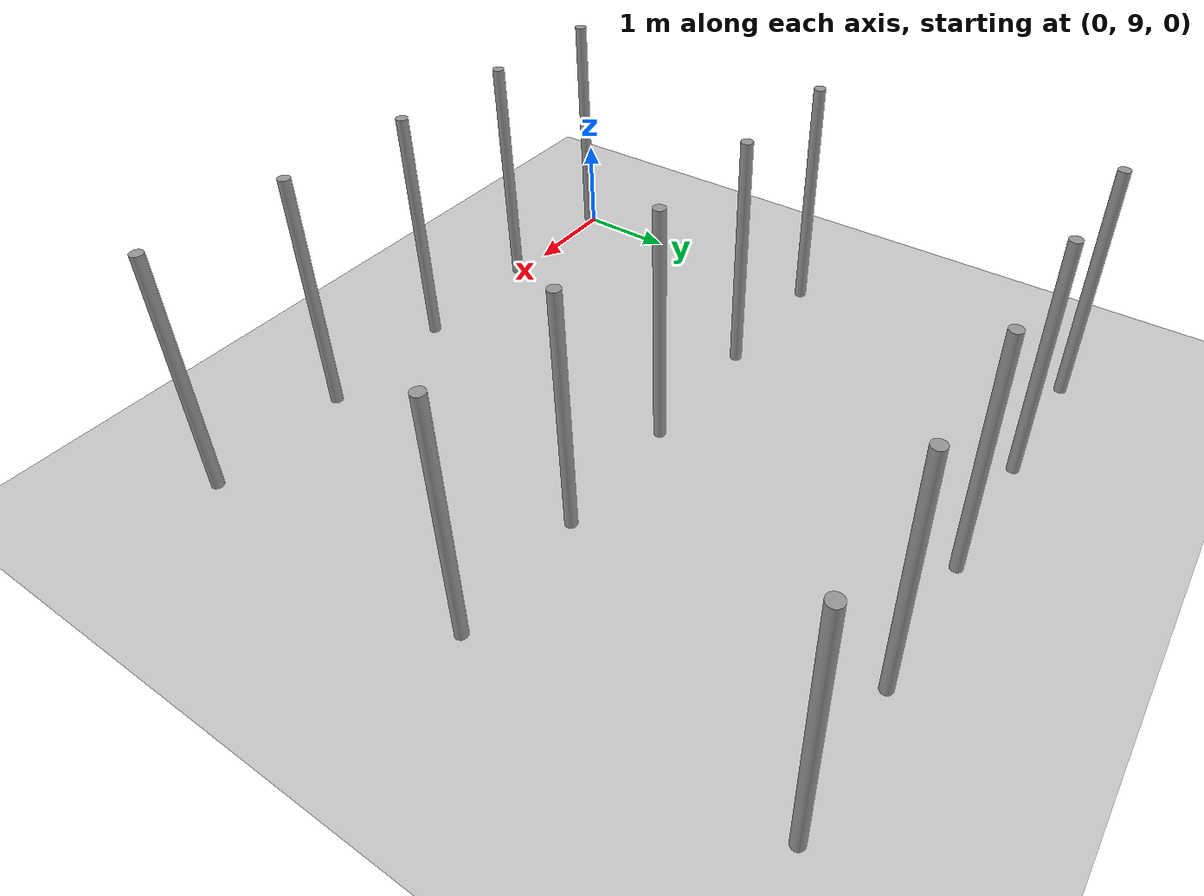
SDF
<sdf version="1.6">
 <world name="default">
  <model name="ground_plane">
   <static>1</static>
   <link name="link">
    <collision name="collision">
     <geometry><plane><normal>0 0 1</normal><size>100 100</size></plane></geometry>
     <surface><friction><ode><mu>100</mu><mu2>50</mu2></ode></friction></surface>
    </collision>
    <visual name="visual">
     <cast_shadows>0</cast_shadows>
     <geometry><plane><normal>0 0 1</normal><size>100 100</size></plane></geometry>
     <material>
      <script><uri>file://media/materials/scripts/gazebo.material</uri><name>Gazebo/Grey</name></script>
     </material>
    </visual>
   </link>
  </model>
  <model name="pole_0">
   <link name="link_0">
    <inertial>
     <mass>0.0364582</mass>
     <inertia>
      <ixx>0.00312124</ixx>
      <ixy>0</ixy>
      <ixz>0</ixz>
      <iyy>0.00312124</iyy>
      <iyz>0</iyz>
      <izz>0.00016615</izz>
     </inertia>
    </inertial>
    <visual name="visual">
     <geometry><cylinder><radius>0.06</radius><length>2.5</length></cylinder></geometry>
     <material>
      <lighting>1</lighting>
      <script><uri>file://media/materials/scripts/gazebo.material</uri><name>Gazebo/Grey</name></script>
      <ambient>0.3 0.3 0.3 1</ambient>
      <diffuse>0.7 0.7 0.7 1</diffuse>
      <specular>0.01 0.01 0.01 1</specular>
      <emissive>0 0 0 1</emissive>
      <shader type="vertex"><normal_map>__default__</normal_map></shader>
     </material>
    </visual>
    <collision name="collision">
     <geometry><cylinder><radius>0.06</radius><length>2.5</length></cylinder></geometry>
     <surface>
      <friction>
       <ode><mu>1</mu><mu2>1</mu2><fdir1>0 0 0</fdir1><slip1>0</slip1><slip2>0</slip2></ode>
       <torsional>
        <coefficient>1</coefficient>
        <patch_radius>0</patch_radius>
        <surface_radius>0</surface_radius>
        <use_patch_radius>1</use_patch_radius>
        <ode><slip>0</slip></ode>
       </torsional>
      </friction>
      <bounce><restitution_coefficient>0</restitution_coefficient><threshold>1e+06</threshold></bounce>
      <contact>
       <collide_without_contact>0</collide_without_contact>
       <collide_without_contact_bitmask>1</collide_without_contact_bitmask>
       <collide_bitmask>1</collide_bitmask>
       <ode>
        <soft_cfm>0</soft_cfm>
        <soft_erp>0.2</soft_erp>
        <kp>1e+13</kp>
        <kd>1</kd>
        <max_vel>0.01</max_vel>
        <min_depth>0</min_depth>
       </ode>
       <bullet>
        <split_impulse>1</split_impulse>
        <split_impulse_penetration_threshold>-0.01</split_impulse_penetration_threshold>
        <soft_cfm>0</soft_cfm>
        <soft_erp>0.2</soft_erp>
        <kp>1e+13</kp>
        <kd>1</kd>
       </bullet>
      </contact>
     </surface>
    </collision>
   </link>
   <static>0</static>
   <pose>0.013509 8.94142 1.25 1e-06 -2e-06 -0.01885</pose>
  </model>
  <model name="pole_1">
   <link name="link_0">
    <inertial>
     <mass>0.0364582</mass>
     <inertia>
      <ixx>0.00312124</ixx>
      <ixy>0</ixy>
      <ixz>0</ixz>
      <iyy>0.00312124</iyy>
      <iyz>0</iyz>
      <izz>0.00016615</izz>
     </inertia>
    </inertial>
    <visual name="visual">
     <geometry><cylinder><radius>0.06</radius><length>2.5</length></cylinder></geometry>
     <material>
      <lighting>1</lighting>
      <script><uri>file://media/materials/scripts/gazebo.material</uri><name>Gazebo/Grey</name></script>
      <ambient>0.3 0.3 0.3 1</ambient>
      <diffuse>0.7 0.7 0.7 1</diffuse>
      <specular>0.01 0.01 0.01 1</specular>
      <emissive>0 0 0 1</emissive>
      <shader type="vertex"><normal_map>__default__</normal_map></shader>
     </material>
    </visual>
    <collision name="collision">
     <geometry><cylinder><radius>0.06</radius><length>2.5</length></cylinder></geometry>
     <surface>
      <friction>
       <ode><mu>1</mu><mu2>1</mu2><fdir1>0 0 0</fdir1><slip1>0</slip1><slip2>0</slip2></ode>
       <torsional>
        <coefficient>1</coefficient>
        <patch_radius>0</patch_radius>
        <surface_radius>0</surface_radius>
        <use_patch_radius>1</use_patch_radius>
        <ode><slip>0</slip></ode>
       </torsional>
      </friction>
      <bounce><restitution_coefficient>0</restitution_coefficient><threshold>1e+06</threshold></bounce>
      <contact>
       <collide_without_contact>0</collide_without_contact>
       <collide_without_contact_bitmask>1</collide_without_contact_bitmask>
       <collide_bitmask>1</collide_bitmask>
       <ode>
        <soft_cfm>0</soft_cfm>
        <soft_erp>0.2</soft_erp>
        <kp>1e+13</kp>
        <kd>1</kd>
        <max_vel>0.01</max_vel>
        <min_depth>0</min_depth>
       </ode>
       <bullet>
        <split_impulse>1</split_impulse>
        <split_impulse_penetration_threshold>-0.01</split_impulse_penetration_threshold>
        <soft_cfm>0</soft_cfm>
        <soft_erp>0.2</soft_erp>
        <kp>1e+13</kp>
        <kd>1</kd>
       </bullet>
      </contact>
     </surface>
    </collision>
   </link>
   <static>0</static>
   <pose>-0.008102 11.9214 1.25 0 -3e-06 -0.018746</pose>
  </model>
  <model name="pole_2">
   <link name="link_0">
    <inertial>
     <mass>0.0364582</mass>
     <inertia>
      <ixx>0.00312124</ixx>
      <ixy>0</ixy>
      <ixz>0</ixz>
      <iyy>0.00312124</iyy>
      <iyz>0</iyz>
      <izz>0.00016615</izz>
     </inertia>
    </inertial>
    <visual name="visual">
     <geometry><cylinder><radius>0.06</radius><length>2.5</length></cylinder></geometry>
     <material>
      <lighting>1</lighting>
      <script><uri>file://media/materials/scripts/gazebo.material</uri><name>Gazebo/Grey</name></script>
      <ambient>0.3 0.3 0.3 1</ambient>
      <diffuse>0.7 0.7 0.7 1</diffuse>
      <specular>0.01 0.01 0.01 1</specular>
      <emissive>0 0 0 1</emissive>
      <shader type="vertex"><normal_map>__default__</normal_map></shader>
     </material>
    </visual>
    <collision name="collision">
     <geometry><cylinder><radius>0.06</radius><length>2.5</length></cylinder></geometry>
     <surface>
      <friction>
       <ode><mu>1</mu><mu2>1</mu2><fdir1>0 0 0</fdir1><slip1>0</slip1><slip2>0</slip2></ode>
       <torsional>
        <coefficient>1</coefficient>
        <patch_radius>0</patch_radius>
        <surface_radius>0</surface_radius>
        <use_patch_radius>1</use_patch_radius>
        <ode><slip>0</slip></ode>
       </torsional>
      </friction>
      <bounce><restitution_coefficient>0</restitution_coefficient><threshold>1e+06</threshold></bounce>
      <contact>
       <collide_without_contact>0</collide_without_contact>
       <collide_without_contact_bitmask>1</collide_without_contact_bitmask>
       <collide_bitmask>1</collide_bitmask>
       <ode>
        <soft_cfm>0</soft_cfm>
        <soft_erp>0.2</soft_erp>
        <kp>1e+13</kp>
        <kd>1</kd>
        <max_vel>0.01</max_vel>
        <min_depth>0</min_depth>
       </ode>
       <bullet>
        <split_impulse>1</split_impulse>
        <split_impulse_penetration_threshold>-0.01</split_impulse_penetration_threshold>
        <soft_cfm>0</soft_cfm>
        <soft_erp>0.2</soft_erp>
        <kp>1e+13</kp>
        <kd>1</kd>
       </bullet>
      </contact>
     </surface>
    </collision>
   </link>
   <static>0</static>
   <pose>0.027568 14.8943 1.24999 -1e-06 0 0.217213</pose>
  </model>
  <model name="pole_16">
   <link name="link_0">
    <inertial>
     <mass>0.0364582</mass>
     <inertia>
      <ixx>0.00312124</ixx>
      <ixy>0</ixy>
      <ixz>0</ixz>
      <iyy>0.00312124</iyy>
      <iyz>0</iyz>
      <izz>0.00016615</izz>
     </inertia>
    </inertial>
    <visual name="visual">
     <geometry><cylinder><radius>0.06</radius><length>2.5</length></cylinder></geometry>
     <material>
      <lighting>1</lighting>
      <script><uri>file://media/materials/scripts/gazebo.material</uri><name>Gazebo/Grey</name></script>
      <ambient>0.3 0.3 0.3 1</ambient>
      <diffuse>0.7 0.7 0.7 1</diffuse>
      <specular>0.01 0.01 0.01 1</specular>
      <emissive>0 0 0 1</emissive>
      <shader type="vertex"><normal_map>__default__</normal_map></shader>
     </material>
    </visual>
    <collision name="collision">
     <geometry><cylinder><radius>0.06</radius><length>2.5</length></cylinder></geometry>
     <surface>
      <friction>
       <ode><mu>1</mu><mu2>1</mu2><fdir1>0 0 0</fdir1><slip1>0</slip1><slip2>0</slip2></ode>
       <torsional>
        <coefficient>1</coefficient>
        <patch_radius>0</patch_radius>
        <surface_radius>0</surface_radius>
        <use_patch_radius>1</use_patch_radius>
        <ode><slip>0</slip></ode>
       </torsional>
      </friction>
      <bounce><restitution_coefficient>0</restitution_coefficient><threshold>1e+06</threshold></bounce>
      <contact>
       <collide_without_contact>0</collide_without_contact>
       <collide_without_contact_bitmask>1</collide_without_contact_bitmask>
       <collide_bitmask>1</collide_bitmask>
       <ode>
        <soft_cfm>0</soft_cfm>
        <soft_erp>0.2</soft_erp>
        <kp>1e+13</kp>
        <kd>1</kd>
        <max_vel>0.01</max_vel>
        <min_depth>0</min_depth>
       </ode>
       <bullet>
        <split_impulse>1</split_impulse>
        <split_impulse_penetration_threshold>-0.01</split_impulse_penetration_threshold>
        <soft_cfm>0</soft_cfm>
        <soft_erp>0.2</soft_erp>
        <kp>1e+13</kp>
        <kd>1</kd>
       </bullet>
      </contact>
     </surface>
    </collision>
   </link>
   <static>0</static>
   <pose>1.41312 8.94068 1.25 1e-06 1e-06 -0.013696</pose>
  </model>
  <model name="pole_17">
   <link name="link_0">
    <inertial>
     <mass>0.0364582</mass>
     <inertia>
      <ixx>0.00312124</ixx>
      <ixy>0</ixy>
      <ixz>0</ixz>
      <iyy>0.00312124</iyy>
      <iyz>0</iyz>
      <izz>0.00016615</izz>
     </inertia>
    </inertial>
    <visual name="visual">
     <geometry><cylinder><radius>0.06</radius><length>2.5</length></cylinder></geometry>
     <material>
      <lighting>1</lighting>
      <script><uri>file://media/materials/scripts/gazebo.material</uri><name>Gazebo/Grey</name></script>
      <ambient>0.3 0.3 0.3 1</ambient>
      <diffuse>0.7 0.7 0.7 1</diffuse>
      <specular>0.01 0.01 0.01 1</specular>
      <emissive>0 0 0 1</emissive>
      <shader type="vertex"><normal_map>__default__</normal_map></shader>
     </material>
    </visual>
    <collision name="collision">
     <geometry><cylinder><radius>0.06</radius><length>2.5</length></cylinder></geometry>
     <surface>
      <friction>
       <ode><mu>1</mu><mu2>1</mu2><fdir1>0 0 0</fdir1><slip1>0</slip1><slip2>0</slip2></ode>
       <torsional>
        <coefficient>1</coefficient>
        <patch_radius>0</patch_radius>
        <surface_radius>0</surface_radius>
        <use_patch_radius>1</use_patch_radius>
        <ode><slip>0</slip></ode>
       </torsional>
      </friction>
      <bounce><restitution_coefficient>0</restitution_coefficient><threshold>1e+06</threshold></bounce>
      <contact>
       <collide_without_contact>0</collide_without_contact>
       <collide_without_contact_bitmask>1</collide_without_contact_bitmask>
       <collide_bitmask>1</collide_bitmask>
       <ode>
        <soft_cfm>0</soft_cfm>
        <soft_erp>0.2</soft_erp>
        <kp>1e+13</kp>
        <kd>1</kd>
        <max_vel>0.01</max_vel>
        <min_depth>0</min_depth>
       </ode>
       <bullet>
        <split_impulse>1</split_impulse>
        <split_impulse_penetration_threshold>-0.01</split_impulse_penetration_threshold>
        <soft_cfm>0</soft_cfm>
        <soft_erp>0.2</soft_erp>
        <kp>1e+13</kp>
        <kd>1</kd>
       </bullet>
      </contact>
     </surface>
    </collision>
   </link>
   <static>0</static>
   <pose>2.79986 8.94076 1.24999 0 -1e-06 -0.009839</pose>
  </model>
  <model name="pole_18">
   <link name="link_0">
    <inertial>
     <mass>0.0364582</mass>
     <inertia>
      <ixx>0.00312124</ixx>
      <ixy>0</ixy>
      <ixz>0</ixz>
      <iyy>0.00312124</iyy>
      <iyz>0</iyz>
      <izz>0.00016615</izz>
     </inertia>
    </inertial>
    <visual name="visual">
     <geometry><cylinder><radius>0.06</radius><length>2.5</length></cylinder></geometry>
     <material>
      <lighting>1</lighting>
      <script><uri>file://media/materials/scripts/gazebo.material</uri><name>Gazebo/Grey</name></script>
      <ambient>0.3 0.3 0.3 1</ambient>
      <diffuse>0.7 0.7 0.7 1</diffuse>
      <specular>0.01 0.01 0.01 1</specular>
      <emissive>0 0 0 1</emissive>
      <shader type="vertex"><normal_map>__default__</normal_map></shader>
     </material>
    </visual>
    <collision name="collision">
     <geometry><cylinder><radius>0.06</radius><length>2.5</length></cylinder></geometry>
     <surface>
      <friction>
       <ode><mu>1</mu><mu2>1</mu2><fdir1>0 0 0</fdir1><slip1>0</slip1><slip2>0</slip2></ode>
       <torsional>
        <coefficient>1</coefficient>
        <patch_radius>0</patch_radius>
        <surface_radius>0</surface_radius>
        <use_patch_radius>1</use_patch_radius>
        <ode><slip>0</slip></ode>
       </torsional>
      </friction>
      <bounce><restitution_coefficient>0</restitution_coefficient><threshold>1e+06</threshold></bounce>
      <contact>
       <collide_without_contact>0</collide_without_contact>
       <collide_without_contact_bitmask>1</collide_without_contact_bitmask>
       <collide_bitmask>1</collide_bitmask>
       <ode>
        <soft_cfm>0</soft_cfm>
        <soft_erp>0.2</soft_erp>
        <kp>1e+13</kp>
        <kd>1</kd>
        <max_vel>0.01</max_vel>
        <min_depth>0</min_depth>
       </ode>
       <bullet>
        <split_impulse>1</split_impulse>
        <split_impulse_penetration_threshold>-0.01</split_impulse_penetration_threshold>
        <soft_cfm>0</soft_cfm>
        <soft_erp>0.2</soft_erp>
        <kp>1e+13</kp>
        <kd>1</kd>
       </bullet>
      </contact>
     </surface>
    </collision>
   </link>
   <static>0</static>
   <pose>4.20387 8.94088 1.25 -1e-06 1e-06 -0.008833</pose>
  </model>
  <model name="pole_19">
   <link name="link_0">
    <inertial>
     <mass>0.0364582</mass>
     <inertia>
      <ixx>0.00312124</ixx>
      <ixy>0</ixy>
      <ixz>0</ixz>
      <iyy>0.00312124</iyy>
      <iyz>0</iyz>
      <izz>0.00016615</izz>
     </inertia>
    </inertial>
    <visual name="visual">
     <geometry><cylinder><radius>0.06</radius><length>2.5</length></cylinder></geometry>
     <material>
      <lighting>1</lighting>
      <script><uri>file://media/materials/scripts/gazebo.material</uri><name>Gazebo/Grey</name></script>
      <ambient>0.3 0.3 0.3 1</ambient>
      <diffuse>0.7 0.7 0.7 1</diffuse>
      <specular>0.01 0.01 0.01 1</specular>
      <emissive>0 0 0 1</emissive>
      <shader type="vertex"><normal_map>__default__</normal_map></shader>
     </material>
    </visual>
    <collision name="collision">
     <geometry><cylinder><radius>0.06</radius><length>2.5</length></cylinder></geometry>
     <surface>
      <friction>
       <ode><mu>1</mu><mu2>1</mu2><fdir1>0 0 0</fdir1><slip1>0</slip1><slip2>0</slip2></ode>
       <torsional>
        <coefficient>1</coefficient>
        <patch_radius>0</patch_radius>
        <surface_radius>0</surface_radius>
        <use_patch_radius>1</use_patch_radius>
        <ode><slip>0</slip></ode>
       </torsional>
      </friction>
      <bounce><restitution_coefficient>0</restitution_coefficient><threshold>1e+06</threshold></bounce>
      <contact>
       <collide_without_contact>0</collide_without_contact>
       <collide_without_contact_bitmask>1</collide_without_contact_bitmask>
       <collide_bitmask>1</collide_bitmask>
       <ode>
        <soft_cfm>0</soft_cfm>
        <soft_erp>0.2</soft_erp>
        <kp>1e+13</kp>
        <kd>1</kd>
        <max_vel>0.01</max_vel>
        <min_depth>0</min_depth>
       </ode>
       <bullet>
        <split_impulse>1</split_impulse>
        <split_impulse_penetration_threshold>-0.01</split_impulse_penetration_threshold>
        <soft_cfm>0</soft_cfm>
        <soft_erp>0.2</soft_erp>
        <kp>1e+13</kp>
        <kd>1</kd>
       </bullet>
      </contact>
     </surface>
    </collision>
   </link>
   <static>0</static>
   <pose>5.62934 8.94078 1.25 -1e-06 -0 -0.008518</pose>
  </model>
  <model name="pole_20">
   <link name="link_0">
    <inertial>
     <mass>0.0364582</mass>
     <inertia>
      <ixx>0.00312124</ixx>
      <ixy>0</ixy>
      <ixz>0</ixz>
      <iyy>0.00312124</iyy>
      <iyz>0</iyz>
      <izz>0.00016615</izz>
     </inertia>
    </inertial>
    <visual name="visual">
     <geometry><cylinder><radius>0.06</radius><length>2.5</length></cylinder></geometry>
     <material>
      <lighting>1</lighting>
      <script><uri>file://media/materials/scripts/gazebo.material</uri><name>Gazebo/Grey</name></script>
      <ambient>0.3 0.3 0.3 1</ambient>
      <diffuse>0.7 0.7 0.7 1</diffuse>
      <specular>0.01 0.01 0.01 1</specular>
      <emissive>0 0 0 1</emissive>
      <shader type="vertex"><normal_map>__default__</normal_map></shader>
     </material>
    </visual>
    <collision name="collision">
     <geometry><cylinder><radius>0.06</radius><length>2.5</length></cylinder></geometry>
     <surface>
      <friction>
       <ode><mu>1</mu><mu2>1</mu2><fdir1>0 0 0</fdir1><slip1>0</slip1><slip2>0</slip2></ode>
       <torsional>
        <coefficient>1</coefficient>
        <patch_radius>0</patch_radius>
        <surface_radius>0</surface_radius>
        <use_patch_radius>1</use_patch_radius>
        <ode><slip>0</slip></ode>
       </torsional>
      </friction>
      <bounce><restitution_coefficient>0</restitution_coefficient><threshold>1e+06</threshold></bounce>
      <contact>
       <collide_without_contact>0</collide_without_contact>
       <collide_without_contact_bitmask>1</collide_without_contact_bitmask>
       <collide_bitmask>1</collide_bitmask>
       <ode>
        <soft_cfm>0</soft_cfm>
        <soft_erp>0.2</soft_erp>
        <kp>1e+13</kp>
        <kd>1</kd>
        <max_vel>0.01</max_vel>
        <min_depth>0</min_depth>
       </ode>
       <bullet>
        <split_impulse>1</split_impulse>
        <split_impulse_penetration_threshold>-0.01</split_impulse_penetration_threshold>
        <soft_cfm>0</soft_cfm>
        <soft_erp>0.2</soft_erp>
        <kp>1e+13</kp>
        <kd>1</kd>
       </bullet>
      </contact>
     </surface>
    </collision>
   </link>
   <static>0</static>
   <pose>1.3958 11.9007 1.25 -1e-06 1e-06 -0.007243</pose>
  </model>
  <model name="pole_21">
   <link name="link_0">
    <inertial>
     <mass>0.0364582</mass>
     <inertia>
      <ixx>0.00312124</ixx>
      <ixy>0</ixy>
      <ixz>0</ixz>
      <iyy>0.00312124</iyy>
      <iyz>0</iyz>
      <izz>0.00016615</izz>
     </inertia>
    </inertial>
    <visual name="visual">
     <geometry><cylinder><radius>0.06</radius><length>2.5</length></cylinder></geometry>
     <material>
      <lighting>1</lighting>
      <script><uri>file://media/materials/scripts/gazebo.material</uri><name>Gazebo/Grey</name></script>
      <ambient>0.3 0.3 0.3 1</ambient>
      <diffuse>0.7 0.7 0.7 1</diffuse>
      <specular>0.01 0.01 0.01 1</specular>
      <emissive>0 0 0 1</emissive>
      <shader type="vertex"><normal_map>__default__</normal_map></shader>
     </material>
    </visual>
    <collision name="collision">
     <geometry><cylinder><radius>0.06</radius><length>2.5</length></cylinder></geometry>
     <surface>
      <friction>
       <ode><mu>1</mu><mu2>1</mu2><fdir1>0 0 0</fdir1><slip1>0</slip1><slip2>0</slip2></ode>
       <torsional>
        <coefficient>1</coefficient>
        <patch_radius>0</patch_radius>
        <surface_radius>0</surface_radius>
        <use_patch_radius>1</use_patch_radius>
        <ode><slip>0</slip></ode>
       </torsional>
      </friction>
      <bounce><restitution_coefficient>0</restitution_coefficient><threshold>1e+06</threshold></bounce>
      <contact>
       <collide_without_contact>0</collide_without_contact>
       <collide_without_contact_bitmask>1</collide_without_contact_bitmask>
       <collide_bitmask>1</collide_bitmask>
       <ode>
        <soft_cfm>0</soft_cfm>
        <soft_erp>0.2</soft_erp>
        <kp>1e+13</kp>
        <kd>1</kd>
        <max_vel>0.01</max_vel>
        <min_depth>0</min_depth>
       </ode>
       <bullet>
        <split_impulse>1</split_impulse>
        <split_impulse_penetration_threshold>-0.01</split_impulse_penetration_threshold>
        <soft_cfm>0</soft_cfm>
        <soft_erp>0.2</soft_erp>
        <kp>1e+13</kp>
        <kd>1</kd>
       </bullet>
      </contact>
     </surface>
    </collision>
   </link>
   <static>0</static>
   <pose>2.8191 11.8944 1.24998 -0.000113 0.00019 0.210972</pose>
  </model>
  <model name="pole_22">
   <link name="link_0">
    <inertial>
     <mass>0.0364582</mass>
     <inertia>
      <ixx>0.00312124</ixx>
      <ixy>0</ixy>
      <ixz>0</ixz>
      <iyy>0.00312124</iyy>
      <iyz>0</iyz>
      <izz>0.00016615</izz>
     </inertia>
    </inertial>
    <visual name="visual">
     <geometry><cylinder><radius>0.06</radius><length>2.5</length></cylinder></geometry>
     <material>
      <lighting>1</lighting>
      <script><uri>file://media/materials/scripts/gazebo.material</uri><name>Gazebo/Grey</name></script>
      <ambient>0.3 0.3 0.3 1</ambient>
      <diffuse>0.7 0.7 0.7 1</diffuse>
      <specular>0.01 0.01 0.01 1</specular>
      <emissive>0 0 0 1</emissive>
      <shader type="vertex"><normal_map>__default__</normal_map></shader>
     </material>
    </visual>
    <collision name="collision">
     <geometry><cylinder><radius>0.06</radius><length>2.5</length></cylinder></geometry>
     <surface>
      <friction>
       <ode><mu>1</mu><mu2>1</mu2><fdir1>0 0 0</fdir1><slip1>0</slip1><slip2>0</slip2></ode>
       <torsional>
        <coefficient>1</coefficient>
        <patch_radius>0</patch_radius>
        <surface_radius>0</surface_radius>
        <use_patch_radius>1</use_patch_radius>
        <ode><slip>0</slip></ode>
       </torsional>
      </friction>
      <bounce><restitution_coefficient>0</restitution_coefficient><threshold>1e+06</threshold></bounce>
      <contact>
       <collide_without_contact>0</collide_without_contact>
       <collide_without_contact_bitmask>1</collide_without_contact_bitmask>
       <collide_bitmask>1</collide_bitmask>
       <ode>
        <soft_cfm>0</soft_cfm>
        <soft_erp>0.2</soft_erp>
        <kp>1e+13</kp>
        <kd>1</kd>
        <max_vel>0.01</max_vel>
        <min_depth>0</min_depth>
       </ode>
       <bullet>
        <split_impulse>1</split_impulse>
        <split_impulse_penetration_threshold>-0.01</split_impulse_penetration_threshold>
        <soft_cfm>0</soft_cfm>
        <soft_erp>0.2</soft_erp>
        <kp>1e+13</kp>
        <kd>1</kd>
       </bullet>
      </contact>
     </surface>
    </collision>
   </link>
   <static>0</static>
   <pose>4.2121 11.9005 1.24999 1e-06 3e-06 -0.006411</pose>
  </model>
  <model name="pole_23">
   <link name="link_0">
    <inertial>
     <mass>0.0364582</mass>
     <inertia>
      <ixx>0.00312124</ixx>
      <ixy>0</ixy>
      <ixz>0</ixz>
      <iyy>0.00312124</iyy>
      <iyz>0</iyz>
      <izz>0.00016615</izz>
     </inertia>
    </inertial>
    <visual name="visual">
     <geometry><cylinder><radius>0.06</radius><length>2.5</length></cylinder></geometry>
     <material>
      <lighting>1</lighting>
      <script><uri>file://media/materials/scripts/gazebo.material</uri><name>Gazebo/Grey</name></script>
      <ambient>0.3 0.3 0.3 1</ambient>
      <diffuse>0.7 0.7 0.7 1</diffuse>
      <specular>0.01 0.01 0.01 1</specular>
      <emissive>0 0 0 1</emissive>
      <shader type="vertex"><normal_map>__default__</normal_map></shader>
     </material>
    </visual>
    <collision name="collision">
     <geometry><cylinder><radius>0.06</radius><length>2.5</length></cylinder></geometry>
     <surface>
      <friction>
       <ode><mu>1</mu><mu2>1</mu2><fdir1>0 0 0</fdir1><slip1>0</slip1><slip2>0</slip2></ode>
       <torsional>
        <coefficient>1</coefficient>
        <patch_radius>0</patch_radius>
        <surface_radius>0</surface_radius>
        <use_patch_radius>1</use_patch_radius>
        <ode><slip>0</slip></ode>
       </torsional>
      </friction>
      <bounce><restitution_coefficient>0</restitution_coefficient><threshold>1e+06</threshold></bounce>
      <contact>
       <collide_without_contact>0</collide_without_contact>
       <collide_without_contact_bitmask>1</collide_without_contact_bitmask>
       <collide_bitmask>1</collide_bitmask>
       <ode>
        <soft_cfm>0</soft_cfm>
        <soft_erp>0.2</soft_erp>
        <kp>1e+13</kp>
        <kd>1</kd>
        <max_vel>0.01</max_vel>
        <min_depth>0</min_depth>
       </ode>
       <bullet>
        <split_impulse>1</split_impulse>
        <split_impulse_penetration_threshold>-0.01</split_impulse_penetration_threshold>
        <soft_cfm>0</soft_cfm>
        <soft_erp>0.2</soft_erp>
        <kp>1e+13</kp>
        <kd>1</kd>
       </bullet>
      </contact>
     </surface>
    </collision>
   </link>
   <static>0</static>
   <pose>5.61609 11.9006 1.25 0 2e-06 -0.006405</pose>
  </model>
  <model name="pole_24">
   <link name="link_0">
    <inertial>
     <mass>0.0364582</mass>
     <inertia>
      <ixx>0.00312124</ixx>
      <ixy>0</ixy>
      <ixz>0</ixz>
      <iyy>0.00312124</iyy>
      <iyz>0</iyz>
      <izz>0.00016615</izz>
     </inertia>
    </inertial>
    <visual name="visual">
     <geometry><cylinder><radius>0.06</radius><length>2.5</length></cylinder></geometry>
     <material>
      <lighting>1</lighting>
      <script><uri>file://media/materials/scripts/gazebo.material</uri><name>Gazebo/Grey</name></script>
      <ambient>0.3 0.3 0.3 1</ambient>
      <diffuse>0.7 0.7 0.7 1</diffuse>
      <specular>0.01 0.01 0.01 1</specular>
      <emissive>0 0 0 1</emissive>
      <shader type="vertex"><normal_map>__default__</normal_map></shader>
     </material>
    </visual>
    <collision name="collision">
     <geometry><cylinder><radius>0.06</radius><length>2.5</length></cylinder></geometry>
     <surface>
      <friction>
       <ode><mu>1</mu><mu2>1</mu2><fdir1>0 0 0</fdir1><slip1>0</slip1><slip2>0</slip2></ode>
       <torsional>
        <coefficient>1</coefficient>
        <patch_radius>0</patch_radius>
        <surface_radius>0</surface_radius>
        <use_patch_radius>1</use_patch_radius>
        <ode><slip>0</slip></ode>
       </torsional>
      </friction>
      <bounce><restitution_coefficient>0</restitution_coefficient><threshold>1e+06</threshold></bounce>
      <contact>
       <collide_without_contact>0</collide_without_contact>
       <collide_without_contact_bitmask>1</collide_without_contact_bitmask>
       <collide_bitmask>1</collide_bitmask>
       <ode>
        <soft_cfm>0</soft_cfm>
        <soft_erp>0.2</soft_erp>
        <kp>1e+13</kp>
        <kd>1</kd>
        <max_vel>0.01</max_vel>
        <min_depth>0</min_depth>
       </ode>
       <bullet>
        <split_impulse>1</split_impulse>
        <split_impulse_penetration_threshold>-0.01</split_impulse_penetration_threshold>
        <soft_cfm>0</soft_cfm>
        <soft_erp>0.2</soft_erp>
        <kp>1e+13</kp>
        <kd>1</kd>
       </bullet>
      </contact>
     </surface>
    </collision>
   </link>
   <static>0</static>
   <pose>1.40425 14.8808 1.24999 -1e-06 1e-06 0.020908</pose>
  </model>
  <model name="pole_25">
   <link name="link_0">
    <inertial>
     <mass>0.0364582</mass>
     <inertia>
      <ixx>0.00312124</ixx>
      <ixy>0</ixy>
      <ixz>0</ixz>
      <iyy>0.00312124</iyy>
      <iyz>0</iyz>
      <izz>0.00016615</izz>
     </inertia>
    </inertial>
    <visual name="visual">
     <geometry><cylinder><radius>0.06</radius><length>2.5</length></cylinder></geometry>
     <material>
      <lighting>1</lighting>
      <script><uri>file://media/materials/scripts/gazebo.material</uri><name>Gazebo/Grey</name></script>
      <ambient>0.3 0.3 0.3 1</ambient>
      <diffuse>0.7 0.7 0.7 1</diffuse>
      <specular>0.01 0.01 0.01 1</specular>
      <emissive>0 0 0 1</emissive>
      <shader type="vertex"><normal_map>__default__</normal_map></shader>
     </material>
    </visual>
    <collision name="collision">
     <geometry><cylinder><radius>0.06</radius><length>2.5</length></cylinder></geometry>
     <surface>
      <friction>
       <ode><mu>1</mu><mu2>1</mu2><fdir1>0 0 0</fdir1><slip1>0</slip1><slip2>0</slip2></ode>
       <torsional>
        <coefficient>1</coefficient>
        <patch_radius>0</patch_radius>
        <surface_radius>0</surface_radius>
        <use_patch_radius>1</use_patch_radius>
        <ode><slip>0</slip></ode>
       </torsional>
      </friction>
      <bounce><restitution_coefficient>0</restitution_coefficient><threshold>1e+06</threshold></bounce>
      <contact>
       <collide_without_contact>0</collide_without_contact>
       <collide_without_contact_bitmask>1</collide_without_contact_bitmask>
       <collide_bitmask>1</collide_bitmask>
       <ode>
        <soft_cfm>0</soft_cfm>
        <soft_erp>0.2</soft_erp>
        <kp>1e+13</kp>
        <kd>1</kd>
        <max_vel>0.01</max_vel>
        <min_depth>0</min_depth>
       </ode>
       <bullet>
        <split_impulse>1</split_impulse>
        <split_impulse_penetration_threshold>-0.01</split_impulse_penetration_threshold>
        <soft_cfm>0</soft_cfm>
        <soft_erp>0.2</soft_erp>
        <kp>1e+13</kp>
        <kd>1</kd>
       </bullet>
      </contact>
     </surface>
    </collision>
   </link>
   <static>0</static>
   <pose>2.80774 14.8803 1.24999 -1e-06 1e-06 -0.012397</pose>
  </model>
  <model name="pole_26">
   <link name="link_0">
    <inertial>
     <mass>0.0364582</mass>
     <inertia>
      <ixx>0.00312124</ixx>
      <ixy>0</ixy>
      <ixz>0</ixz>
      <iyy>0.00312124</iyy>
      <iyz>0</iyz>
      <izz>0.00016615</izz>
     </inertia>
    </inertial>
    <visual name="visual">
     <geometry><cylinder><radius>0.06</radius><length>2.5</length></cylinder></geometry>
     <material>
      <lighting>1</lighting>
      <script><uri>file://media/materials/scripts/gazebo.material</uri><name>Gazebo/Grey</name></script>
      <ambient>0.3 0.3 0.3 1</ambient>
      <diffuse>0.7 0.7 0.7 1</diffuse>
      <specular>0.01 0.01 0.01 1</specular>
      <emissive>0 0 0 1</emissive>
      <shader type="vertex"><normal_map>__default__</normal_map></shader>
     </material>
    </visual>
    <collision name="collision">
     <geometry><cylinder><radius>0.06</radius><length>2.5</length></cylinder></geometry>
     <surface>
      <friction>
       <ode><mu>1</mu><mu2>1</mu2><fdir1>0 0 0</fdir1><slip1>0</slip1><slip2>0</slip2></ode>
       <torsional>
        <coefficient>1</coefficient>
        <patch_radius>0</patch_radius>
        <surface_radius>0</surface_radius>
        <use_patch_radius>1</use_patch_radius>
        <ode><slip>0</slip></ode>
       </torsional>
      </friction>
      <bounce><restitution_coefficient>0</restitution_coefficient><threshold>1e+06</threshold></bounce>
      <contact>
       <collide_without_contact>0</collide_without_contact>
       <collide_without_contact_bitmask>1</collide_without_contact_bitmask>
       <collide_bitmask>1</collide_bitmask>
       <ode>
        <soft_cfm>0</soft_cfm>
        <soft_erp>0.2</soft_erp>
        <kp>1e+13</kp>
        <kd>1</kd>
        <max_vel>0.01</max_vel>
        <min_depth>0</min_depth>
       </ode>
       <bullet>
        <split_impulse>1</split_impulse>
        <split_impulse_penetration_threshold>-0.01</split_impulse_penetration_threshold>
        <soft_cfm>0</soft_cfm>
        <soft_erp>0.2</soft_erp>
        <kp>1e+13</kp>
        <kd>1</kd>
       </bullet>
      </contact>
     </surface>
    </collision>
   </link>
   <static>0</static>
   <pose>4.21207 14.8804 1.24999 0 0 -0.006898</pose>
  </model>
  <model name="pole_27">
   <link name="link_0">
    <inertial>
     <mass>0.0364582</mass>
     <inertia>
      <ixx>0.00312124</ixx>
      <ixy>0</ixy>
      <ixz>0</ixz>
      <iyy>0.00312124</iyy>
      <iyz>0</iyz>
      <izz>0.00016615</izz>
     </inertia>
    </inertial>
    <visual name="visual">
     <geometry><cylinder><radius>0.06</radius><length>2.5</length></cylinder></geometry>
     <material>
      <lighting>1</lighting>
      <script><uri>file://media/materials/scripts/gazebo.material</uri><name>Gazebo/Grey</name></script>
      <ambient>0.3 0.3 0.3 1</ambient>
      <diffuse>0.7 0.7 0.7 1</diffuse>
      <specular>0.01 0.01 0.01 1</specular>
      <emissive>0 0 0 1</emissive>
      <shader type="vertex"><normal_map>__default__</normal_map></shader>
     </material>
    </visual>
    <collision name="collision">
     <geometry><cylinder><radius>0.06</radius><length>2.5</length></cylinder></geometry>
     <surface>
      <friction>
       <ode><mu>1</mu><mu2>1</mu2><fdir1>0 0 0</fdir1><slip1>0</slip1><slip2>0</slip2></ode>
       <torsional>
        <coefficient>1</coefficient>
        <patch_radius>0</patch_radius>
        <surface_radius>0</surface_radius>
        <use_patch_radius>1</use_patch_radius>
        <ode><slip>0</slip></ode>
       </torsional>
      </friction>
      <bounce><restitution_coefficient>0</restitution_coefficient><threshold>1e+06</threshold></bounce>
      <contact>
       <collide_without_contact>0</collide_without_contact>
       <collide_without_contact_bitmask>1</collide_without_contact_bitmask>
       <collide_bitmask>1</collide_bitmask>
       <ode>
        <soft_cfm>0</soft_cfm>
        <soft_erp>0.2</soft_erp>
        <kp>1e+13</kp>
        <kd>1</kd>
        <max_vel>0.01</max_vel>
        <min_depth>0</min_depth>
       </ode>
       <bullet>
        <split_impulse>1</split_impulse>
        <split_impulse_penetration_threshold>-0.01</split_impulse_penetration_threshold>
        <soft_cfm>0</soft_cfm>
        <soft_erp>0.2</soft_erp>
        <kp>1e+13</kp>
        <kd>1</kd>
       </bullet>
      </contact>
     </surface>
    </collision>
   </link>
   <static>0</static>
   <pose>5.62004 14.8803 1.25 -1e-06 2e-06 -0.004397</pose>
  </model>
 </world>
</sdf>
